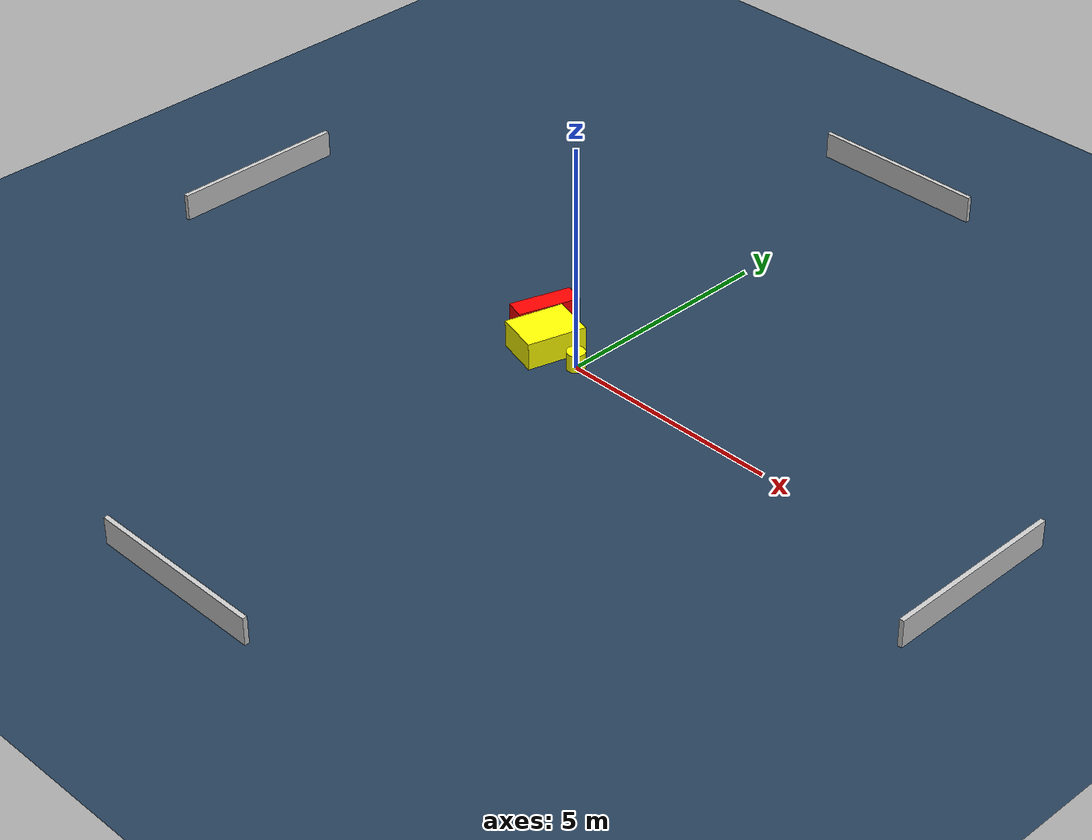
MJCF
<?xml version="1.0" ?>
<mujoco model="generated_environment">
  <option timestep="0.01" integrator="RK4" cone="elliptic"/>
  <default>
    <geom density="1"/>
  </default>
  <asset>
    <texture builtin="gradient" height="3072" name="skybox" rgb1="0.3 0.5 0.7" rgb2="0 0 0" type="skybox" width="512"/>
    <texture builtin="checker" height="300" name="groundplane" rgb1="0.2 0.3 0.4" rgb2="0.1 0.2 0.3" type="2d" width="300"/>
    <material name="groundplane" reflectance="0.2" texrepeat="5 5" texture="groundplane"/>
  </asset>
  <worldbody>
    <light dir="0 0 -1" directional="true" pos="0 0 1.5"/>
    <geom condim="3" friction="0.5 0.005 0.001" material="groundplane" name="floor" pos="0 0 0" size="0 0 0.05" type="plane"/>
    <body name="walls">
      <geom name="wall_1" condim="4" pos="-10.0 0.0 0.3" rgba="0.800000011920929 0.800000011920929 0.800000011920929 1.0" size="0.05 2.0 0.3" type="box"/>
      <geom name="wall_2" condim="4" pos="10.0 0.0 0.3" rgba="0.800000011920929 0.800000011920929 0.800000011920929 1.0" size="0.05 2.0 0.3" type="box"/>
      <geom name="wall_3" condim="4" pos="0.0 -10.0 0.3" rgba="0.800000011920929 0.800000011920929 0.800000011920929 1.0" size="2.0 0.05 0.3" type="box"/>
      <geom name="wall_4" condim="4" pos="0.0 10.0 0.3" rgba="0.800000011920929 0.800000011920929 0.800000011920929 1.0" size="2.0 0.05 0.3" type="box"/>
    </body>
    <body name="robot">
      <joint name="joint_x" type="slide" pos="0 0 0" axis="1 0 0"/>
      <joint name="joint_y" type="slide" pos="0 0 0" axis="0 1 0"/>
      <geom name="robot" type="cylinder" pos="0.0 0.0 0.2" size="0.2 0.2 0.0" mass="5.0" friction="1.0 0.005 0.0001" condim="4" rgba="1.0 1.0 0.0 1.0"/>
    </body>
    <body name="obstacle_1_movable">
      <geom name="obstacle_1_movable" condim="4" pos="-0.9083747154513752 0.03502699260371251 0.3" euler="0 0 254.14799404826772" friction="0.0 0.005 0.001" rgba="1.0 1.0 0.0 1.0" size="0.6538484164523182 0.4969698741841345 0.3" type="box" mass="0.1"/>
      <joint type="free"/>
    </body>
    <body name="obstacle_2_static">
      <geom name="obstacle_2_static" condim="4" pos="-1.5299677847908448 0.6180220727856324 0.3" euler="0 0 161.85665870509703" friction="0.0 0.005 0.001" rgba="1.0 0.0 0.0 1.0" size="0.22967832853092884 0.6857334396825228 0.3" type="box"/>
    </body>
  </worldbody>
  <actuator>
    <motor name="actuator_x" joint="joint_x" gear="1" ctrlrange="-1 1"/>
    <motor name="actuator_y" joint="joint_y" gear="1" ctrlrange="-1 1"/>
  </actuator>
</mujoco>
